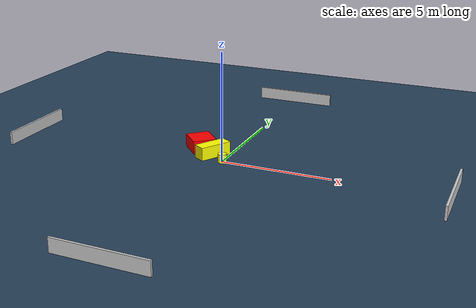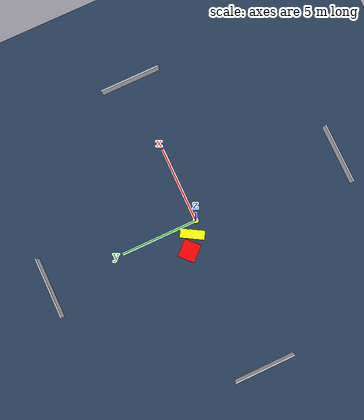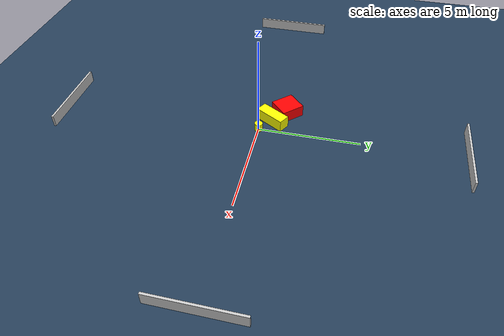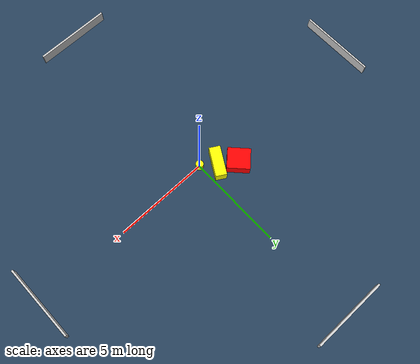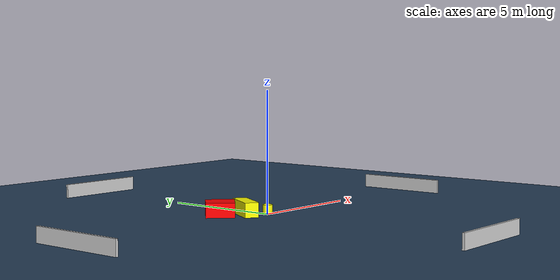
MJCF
<?xml version="1.0" ?>
<mujoco model="generated_environment">
  <option timestep="0.01" integrator="RK4" cone="elliptic"/>
  <default>
    <geom density="1"/>
  </default>
  <asset>
    <texture builtin="gradient" height="3072" name="skybox" rgb1="0.3 0.5 0.7" rgb2="0 0 0" type="skybox" width="512"/>
    <texture builtin="checker" height="300" name="groundplane" rgb1="0.2 0.3 0.4" rgb2="0.1 0.2 0.3" type="2d" width="300"/>
    <material name="groundplane" reflectance="0.2" texrepeat="5 5" texture="groundplane"/>
  </asset>
  <worldbody>
    <light dir="0 0 -1" directional="true" pos="0 0 1.5"/>
    <geom condim="3" friction="0.5 0.005 0.001" material="groundplane" name="floor" pos="0 0 0" size="0 0 0.05" type="plane"/>
    <body name="walls">
      <geom name="wall_1" condim="4" pos="-10.0 0.0 0.3" rgba="0.800000011920929 0.800000011920929 0.800000011920929 1.0" size="0.05 2.0 0.3" type="box"/>
      <geom name="wall_2" condim="4" pos="10.0 0.0 0.3" rgba="0.800000011920929 0.800000011920929 0.800000011920929 1.0" size="0.05 2.0 0.3" type="box"/>
      <geom name="wall_3" condim="4" pos="0.0 -10.0 0.3" rgba="0.800000011920929 0.800000011920929 0.800000011920929 1.0" size="2.0 0.05 0.3" type="box"/>
      <geom name="wall_4" condim="4" pos="0.0 10.0 0.3" rgba="0.800000011920929 0.800000011920929 0.800000011920929 1.0" size="2.0 0.05 0.3" type="box"/>
    </body>
    <body name="robot">
      <joint name="joint_x" type="slide" pos="0 0 0" axis="1 0 0"/>
      <joint name="joint_y" type="slide" pos="0 0 0" axis="0 1 0"/>
      <geom name="robot" type="cylinder" pos="0.0 0.0 0.2" size="0.2 0.2 0.0" mass="5.0" friction="1.0 0.005 0.0001" condim="4" rgba="1.0 1.0 0.0 1.0"/>
    </body>
    <body name="obstacle_1_movable">
      <geom name="obstacle_1_movable" condim="4" pos="-0.7144281444013164 0.5568532304363903 0.3" euler="0 0 329.5874261851856" friction="0.0 0.005 0.001" rgba="1.0 1.0 0.0 1.0" size="0.2892723586092626 0.7736980838133285 0.3" type="box" mass="0.1"/>
      <joint type="free"/>
    </body>
    <body name="obstacle_2_static">
      <geom name="obstacle_2_static" condim="4" pos="-1.5752235152920429 1.1556611415329376 0.3" euler="0 0 43.663083540108985" friction="0.0 0.005 0.001" rgba="1.0 0.0 0.0 1.0" size="0.5479379673222553 0.5854687859064793 0.3" type="box"/>
    </body>
  </worldbody>
  <actuator>
    <motor name="actuator_x" joint="joint_x" gear="1" ctrlrange="-1 1"/>
    <motor name="actuator_y" joint="joint_y" gear="1" ctrlrange="-1 1"/>
  </actuator>
</mujoco>
